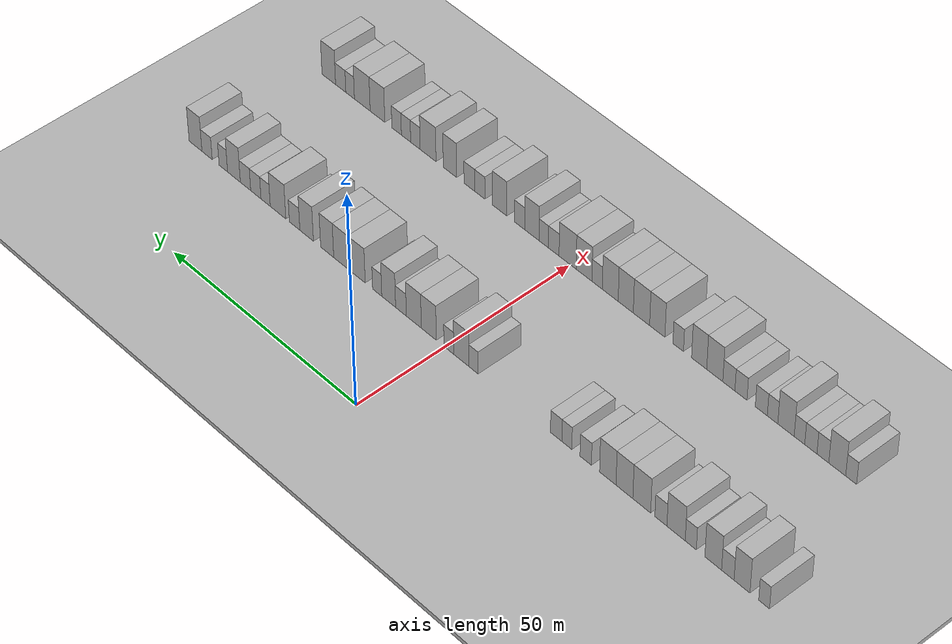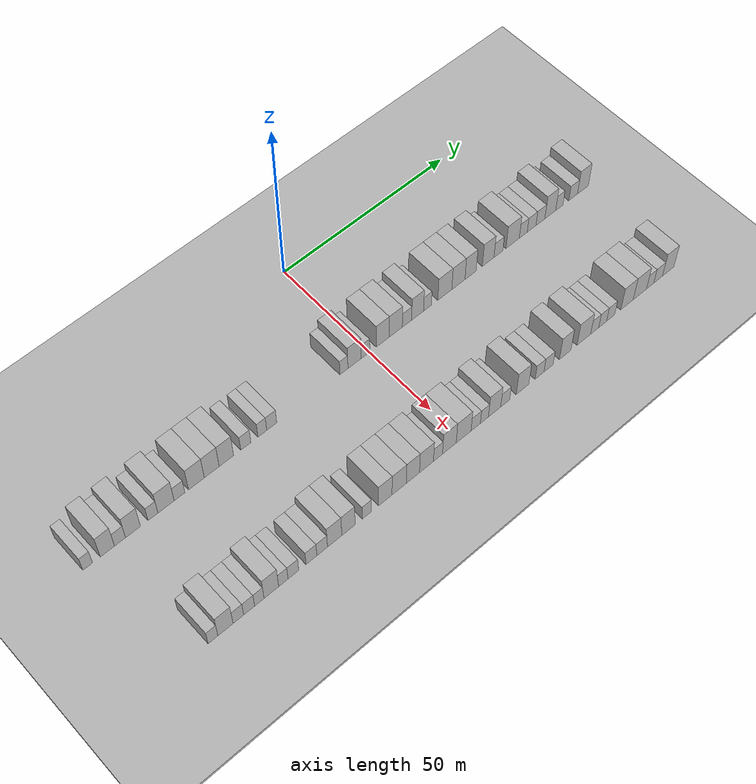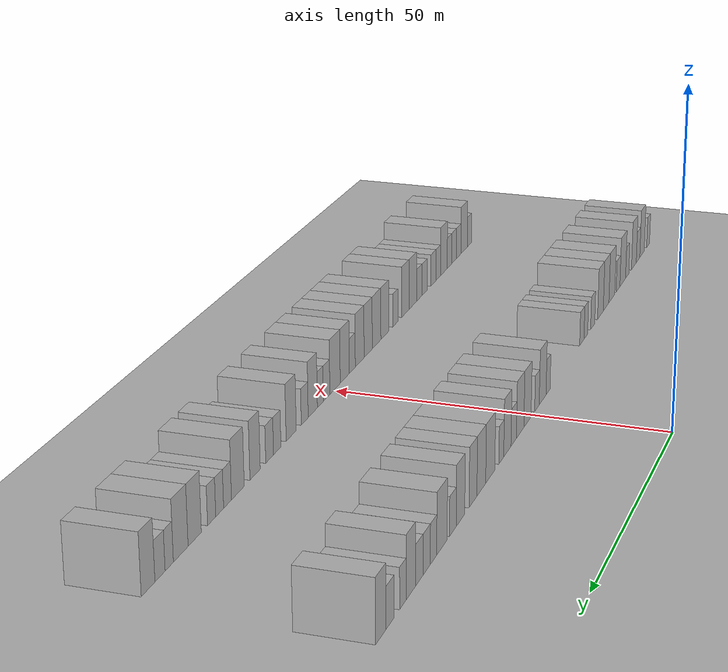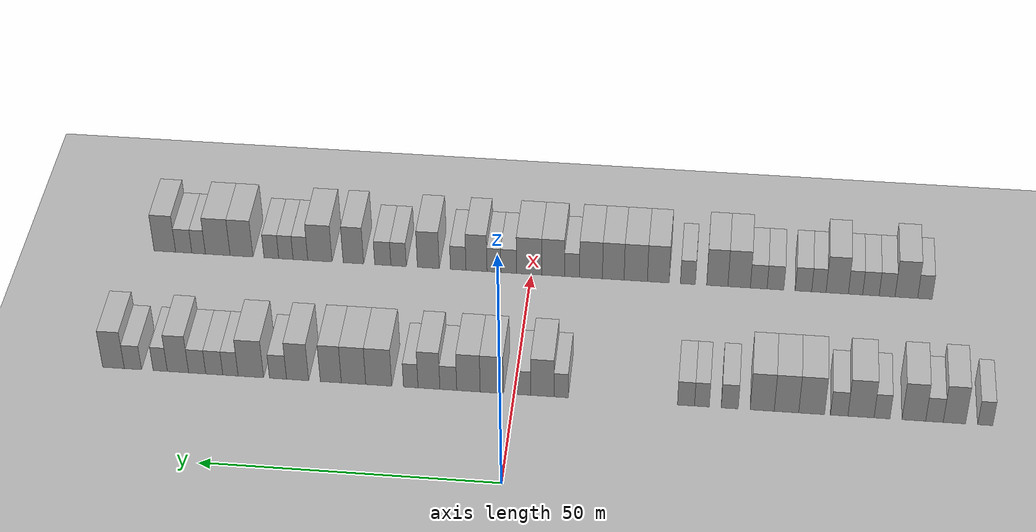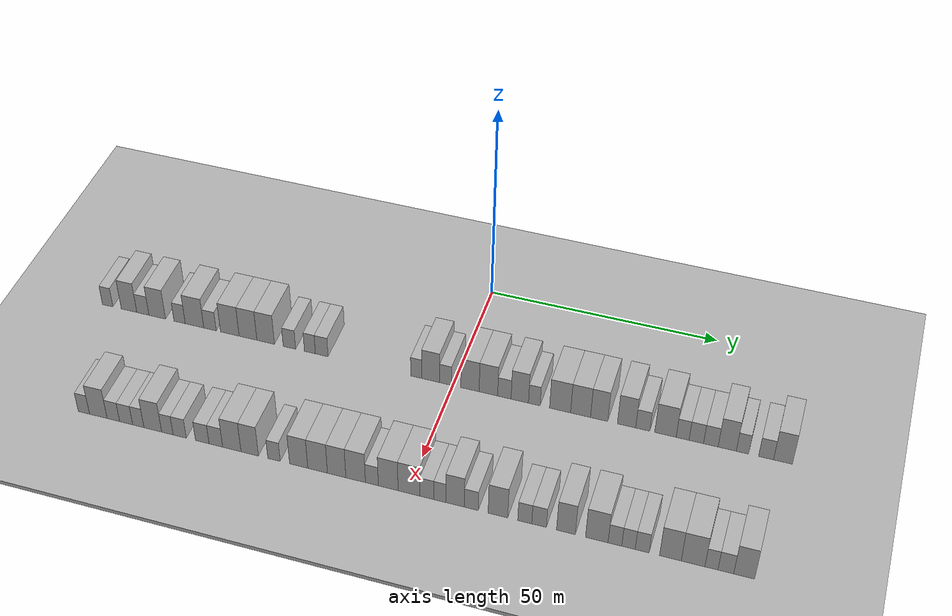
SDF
<sdf version="1.6">
 <world name="default">
  <include><name>ground_plane_1</name><uri>model://HANNAS_ground_plane</uri></include>
  <include>
   <name>ground_plane_2</name>
   <uri>model://HANNAS_ground_plane</uri>
   <pose>100 0 0  0 0 0</pose>
  </include>
  <model name="building_38">
   <static>1</static>
   <pose>25.0000 -78.6994 0 0.000000 0.000000 0.000000</pose>
   <link name="link">
    <pose>0 0 3.00 0 0 0</pose>
    <collision name="collision"><geometry><box><size>10.0000 2.4998 6.0000</size></box></geometry></collision>
    <visual name="visual">
     <cast_shadows>0</cast_shadows>
     <geometry><box><size>10.0000 2.4998 6.0000</size></box></geometry>
     <material>
      <script>
       <uri>model://HANNAS_wall/materials/scripts</uri>
       <uri>model://HANNAS_wall/materials/textures</uri>
       <name>vrc/HANNAS_wall</name>
      </script>
     </material>
    </visual>
   </link>
  </model>
  <model name="building_39">
   <static>1</static>
   <pose>25.0000 -73.6021 0 0.000000 0.000000 0.000000</pose>
   <link name="link">
    <pose>0 0 4.50 0 0 0</pose>
    <collision name="collision"><geometry><box><size>10.0000 3.6949 9.0000</size></box></geometry></collision>
    <visual name="visual">
     <cast_shadows>0</cast_shadows>
     <geometry><box><size>10.0000 3.6949 9.0000</size></box></geometry>
     <material>
      <script>
       <uri>model://HANNAS_wall/materials/scripts</uri>
       <uri>model://HANNAS_wall/materials/textures</uri>
       <name>vrc/HANNAS_wall</name>
      </script>
     </material>
    </visual>
   </link>
  </model>
  <model name="building_40">
   <static>1</static>
   <pose>25.0000 -70.3064 0 0.000000 0.000000 0.000000</pose>
   <link name="link">
    <pose>0 0 3.00 0 0 0</pose>
    <collision name="collision"><geometry><box><size>10.0000 2.8964 6.0000</size></box></geometry></collision>
    <visual name="visual">
     <cast_shadows>0</cast_shadows>
     <geometry><box><size>10.0000 2.8964 6.0000</size></box></geometry>
     <material>
      <script>
       <uri>model://HANNAS_wall/materials/scripts</uri>
       <uri>model://HANNAS_wall/materials/textures</uri>
       <name>vrc/HANNAS_wall</name>
      </script>
     </material>
    </visual>
   </link>
  </model>
  <model name="building_41">
   <static>1</static>
   <pose>25.0000 -66.8983 0 0.000000 0.000000 0.000000</pose>
   <link name="link">
    <pose>0 0 4.50 0 0 0</pose>
    <collision name="collision"><geometry><box><size>10.0000 3.9198 9.0000</size></box></geometry></collision>
    <visual name="visual">
     <cast_shadows>0</cast_shadows>
     <geometry><box><size>10.0000 3.9198 9.0000</size></box></geometry>
     <material>
      <script>
       <uri>model://HANNAS_wall/materials/scripts</uri>
       <uri>model://HANNAS_wall/materials/textures</uri>
       <name>vrc/HANNAS_wall</name>
      </script>
     </material>
    </visual>
   </link>
  </model>
  <model name="building_42">
   <static>1</static>
   <pose>25.0000 -61.6221 0 0.000000 0.000000 0.000000</pose>
   <link name="link">
    <pose>0 0 3.00 0 0 0</pose>
    <collision name="collision"><geometry><box><size>10.0000 2.6326 6.0000</size></box></geometry></collision>
    <visual name="visual">
     <cast_shadows>0</cast_shadows>
     <geometry><box><size>10.0000 2.6326 6.0000</size></box></geometry>
     <material>
      <script>
       <uri>model://HANNAS_wall/materials/scripts</uri>
       <uri>model://HANNAS_wall/materials/textures</uri>
       <name>vrc/HANNAS_wall</name>
      </script>
     </material>
    </visual>
   </link>
  </model>
  <model name="building_43">
   <static>1</static>
   <pose>25.0000 -58.1320 0 0.000000 0.000000 0.000000</pose>
   <link name="link">
    <pose>0 0 4.50 0 0 0</pose>
    <collision name="collision"><geometry><box><size>10.0000 4.3477 9.0000</size></box></geometry></collision>
    <visual name="visual">
     <cast_shadows>0</cast_shadows>
     <geometry><box><size>10.0000 4.3477 9.0000</size></box></geometry>
     <material>
      <script>
       <uri>model://HANNAS_wall/materials/scripts</uri>
       <uri>model://HANNAS_wall/materials/textures</uri>
       <name>vrc/HANNAS_wall</name>
      </script>
     </material>
    </visual>
   </link>
  </model>
  <model name="building_44">
   <static>1</static>
   <pose>25.0000 -54.5126 0 0.000000 0.000000 0.000000</pose>
   <link name="link">
    <pose>0 0 3.00 0 0 0</pose>
    <collision name="collision"><geometry><box><size>10.0000 2.8912 6.0000</size></box></geometry></collision>
    <visual name="visual">
     <cast_shadows>0</cast_shadows>
     <geometry><box><size>10.0000 2.8912 6.0000</size></box></geometry>
     <material>
      <script>
       <uri>model://HANNAS_wall/materials/scripts</uri>
       <uri>model://HANNAS_wall/materials/textures</uri>
       <name>vrc/HANNAS_wall</name>
      </script>
     </material>
    </visual>
   </link>
  </model>
  <model name="building_45">
   <static>1</static>
   <pose>25.0000 -49.9171 0 0.000000 0.000000 0.000000</pose>
   <link name="link">
    <pose>0 0 4.50 0 0 0</pose>
    <collision name="collision"><geometry><box><size>10.0000 4.2998 9.0000</size></box></geometry></collision>
    <visual name="visual">
     <cast_shadows>0</cast_shadows>
     <geometry><box><size>10.0000 4.2998 9.0000</size></box></geometry>
     <material>
      <script>
       <uri>model://HANNAS_wall/materials/scripts</uri>
       <uri>model://HANNAS_wall/materials/textures</uri>
       <name>vrc/HANNAS_wall</name>
      </script>
     </material>
    </visual>
   </link>
  </model>
  <model name="building_46">
   <static>1</static>
   <pose>25.0000 -45.7218 0 0.000000 0.000000 0.000000</pose>
   <link name="link">
    <pose>0 0 4.50 0 0 0</pose>
    <collision name="collision"><geometry><box><size>10.0000 4.0908 9.0000</size></box></geometry></collision>
    <visual name="visual">
     <cast_shadows>0</cast_shadows>
     <geometry><box><size>10.0000 4.0908 9.0000</size></box></geometry>
     <material>
      <script>
       <uri>model://HANNAS_wall/materials/scripts</uri>
       <uri>model://HANNAS_wall/materials/textures</uri>
       <name>vrc/HANNAS_wall</name>
      </script>
     </material>
    </visual>
   </link>
  </model>
  <model name="building_47">
   <static>1</static>
   <pose>25.0000 -41.6653 0 0.000000 0.000000 0.000000</pose>
   <link name="link">
    <pose>0 0 4.50 0 0 0</pose>
    <collision name="collision"><geometry><box><size>10.0000 4.0222 9.0000</size></box></geometry></collision>
    <visual name="visual">
     <cast_shadows>0</cast_shadows>
     <geometry><box><size>10.0000 4.0222 9.0000</size></box></geometry>
     <material>
      <script>
       <uri>model://HANNAS_wall/materials/scripts</uri>
       <uri>model://HANNAS_wall/materials/textures</uri>
       <name>vrc/HANNAS_wall</name>
      </script>
     </material>
    </visual>
   </link>
  </model>
  <model name="building_48">
   <static>1</static>
   <pose>25.0000 -36.2371 0 0.000000 0.000000 0.000000</pose>
   <link name="link">
    <pose>0 0 3.00 0 0 0</pose>
    <collision name="collision"><geometry><box><size>10.0000 2.8341 6.0000</size></box></geometry></collision>
    <visual name="visual">
     <cast_shadows>0</cast_shadows>
     <geometry><box><size>10.0000 2.8341 6.0000</size></box></geometry>
     <material>
      <script>
       <uri>model://HANNAS_wall/materials/scripts</uri>
       <uri>model://HANNAS_wall/materials/textures</uri>
       <name>vrc/HANNAS_wall</name>
      </script>
     </material>
    </visual>
   </link>
  </model>
  <model name="building_49">
   <static>1</static>
   <pose>25.0000 -31.5848 0 0.000000 0.000000 0.000000</pose>
   <link name="link">
    <pose>0 0 3.00 0 0 0</pose>
    <collision name="collision"><geometry><box><size>10.0000 2.4705 6.0000</size></box></geometry></collision>
    <visual name="visual">
     <cast_shadows>0</cast_shadows>
     <geometry><box><size>10.0000 2.4705 6.0000</size></box></geometry>
     <material>
      <script>
       <uri>model://HANNAS_wall/materials/scripts</uri>
       <uri>model://HANNAS_wall/materials/textures</uri>
       <name>vrc/HANNAS_wall</name>
      </script>
     </material>
    </visual>
   </link>
  </model>
  <model name="building_50">
   <static>1</static>
   <pose>25.0000 -28.9185 0 0.000000 0.000000 0.000000</pose>
   <link name="link">
    <pose>0 0 3.00 0 0 0</pose>
    <collision name="collision"><geometry><box><size>10.0000 2.8621 6.0000</size></box></geometry></collision>
    <visual name="visual">
     <cast_shadows>0</cast_shadows>
     <geometry><box><size>10.0000 2.8621 6.0000</size></box></geometry>
     <material>
      <script>
       <uri>model://HANNAS_wall/materials/scripts</uri>
       <uri>model://HANNAS_wall/materials/textures</uri>
       <name>vrc/HANNAS_wall</name>
      </script>
     </material>
    </visual>
   </link>
  </model>
  <model name="building_51">
   <static>1</static>
   <pose>25.0000 -7.8874 0 0.000000 0.000000 0.000000</pose>
   <link name="link">
    <pose>0 0 3.00 0 0 0</pose>
    <collision name="collision"><geometry><box><size>10.0000 2.4000 6.0000</size></box></geometry></collision>
    <visual name="visual">
     <cast_shadows>0</cast_shadows>
     <geometry><box><size>10.0000 2.4000 6.0000</size></box></geometry>
     <material>
      <script>
       <uri>model://HANNAS_wall/materials/scripts</uri>
       <uri>model://HANNAS_wall/materials/textures</uri>
       <name>vrc/HANNAS_wall</name>
      </script>
     </material>
    </visual>
   </link>
  </model>
  <model name="building_52">
   <static>1</static>
   <pose>25.0000 -4.7099 0 0.000000 0.000000 0.000000</pose>
   <link name="link">
    <pose>0 0 4.50 0 0 0</pose>
    <collision name="collision"><geometry><box><size>10.0000 3.9548 9.0000</size></box></geometry></collision>
    <visual name="visual">
     <cast_shadows>0</cast_shadows>
     <geometry><box><size>10.0000 3.9548 9.0000</size></box></geometry>
     <material>
      <script>
       <uri>model://HANNAS_wall/materials/scripts</uri>
       <uri>model://HANNAS_wall/materials/textures</uri>
       <name>vrc/HANNAS_wall</name>
      </script>
     </material>
    </visual>
   </link>
  </model>
  <model name="building_53">
   <static>1</static>
   <pose>25.0000 -1.4453 0 0.000000 0.000000 0.000000</pose>
   <link name="link">
    <pose>0 0 3.00 0 0 0</pose>
    <collision name="collision"><geometry><box><size>10.0000 2.5744 6.0000</size></box></geometry></collision>
    <visual name="visual">
     <cast_shadows>0</cast_shadows>
     <geometry><box><size>10.0000 2.5744 6.0000</size></box></geometry>
     <material>
      <script>
       <uri>model://HANNAS_wall/materials/scripts</uri>
       <uri>model://HANNAS_wall/materials/textures</uri>
       <name>vrc/HANNAS_wall</name>
      </script>
     </material>
    </visual>
   </link>
  </model>
  <model name="building_54">
   <static>1</static>
   <pose>25.0000 3.8221 0 0.000000 0.000000 0.000000</pose>
   <link name="link">
    <pose>0 0 4.50 0 0 0</pose>
    <collision name="collision"><geometry><box><size>10.0000 3.9604 9.0000</size></box></geometry></collision>
    <visual name="visual">
     <cast_shadows>0</cast_shadows>
     <geometry><box><size>10.0000 3.9604 9.0000</size></box></geometry>
     <material>
      <script>
       <uri>model://HANNAS_wall/materials/scripts</uri>
       <uri>model://HANNAS_wall/materials/textures</uri>
       <name>vrc/HANNAS_wall</name>
      </script>
     </material>
    </visual>
   </link>
  </model>
  <model name="building_55">
   <static>1</static>
   <pose>25.0000 7.7938 0 0.000000 0.000000 0.000000</pose>
   <link name="link">
    <pose>0 0 4.50 0 0 0</pose>
    <collision name="collision"><geometry><box><size>10.0000 3.9830 9.0000</size></box></geometry></collision>
    <visual name="visual">
     <cast_shadows>0</cast_shadows>
     <geometry><box><size>10.0000 3.9830 9.0000</size></box></geometry>
     <material>
      <script>
       <uri>model://HANNAS_wall/materials/scripts</uri>
       <uri>model://HANNAS_wall/materials/textures</uri>
       <name>vrc/HANNAS_wall</name>
      </script>
     </material>
    </visual>
   </link>
  </model>
  <model name="building_56">
   <static>1</static>
   <pose>25.0000 11.2202 0 0.000000 0.000000 0.000000</pose>
   <link name="link">
    <pose>0 0 3.00 0 0 0</pose>
    <collision name="collision"><geometry><box><size>10.0000 2.8698 6.0000</size></box></geometry></collision>
    <visual name="visual">
     <cast_shadows>0</cast_shadows>
     <geometry><box><size>10.0000 2.8698 6.0000</size></box></geometry>
     <material>
      <script>
       <uri>model://HANNAS_wall/materials/scripts</uri>
       <uri>model://HANNAS_wall/materials/textures</uri>
       <name>vrc/HANNAS_wall</name>
      </script>
     </material>
    </visual>
   </link>
  </model>
  <model name="building_57">
   <static>1</static>
   <pose>25.0000 14.5161 0 0.000000 0.000000 0.000000</pose>
   <link name="link">
    <pose>0 0 4.50 0 0 0</pose>
    <collision name="collision"><geometry><box><size>10.0000 3.7220 9.0000</size></box></geometry></collision>
    <visual name="visual">
     <cast_shadows>0</cast_shadows>
     <geometry><box><size>10.0000 3.7220 9.0000</size></box></geometry>
     <material>
      <script>
       <uri>model://HANNAS_wall/materials/scripts</uri>
       <uri>model://HANNAS_wall/materials/textures</uri>
       <name>vrc/HANNAS_wall</name>
      </script>
     </material>
    </visual>
   </link>
  </model>
  <model name="building_58">
   <static>1</static>
   <pose>25.0000 17.6144 0 0.000000 0.000000 0.000000</pose>
   <link name="link">
    <pose>0 0 3.00 0 0 0</pose>
    <collision name="collision"><geometry><box><size>10.0000 2.4745 6.0000</size></box></geometry></collision>
    <visual name="visual">
     <cast_shadows>0</cast_shadows>
     <geometry><box><size>10.0000 2.4745 6.0000</size></box></geometry>
     <material>
      <script>
       <uri>model://HANNAS_wall/materials/scripts</uri>
       <uri>model://HANNAS_wall/materials/textures</uri>
       <name>vrc/HANNAS_wall</name>
      </script>
     </material>
    </visual>
   </link>
  </model>
  <model name="building_59">
   <static>1</static>
   <pose>25.0000 23.0689 0 0.000000 0.000000 0.000000</pose>
   <link name="link">
    <pose>0 0 4.50 0 0 0</pose>
    <collision name="collision"><geometry><box><size>10.0000 4.4346 9.0000</size></box></geometry></collision>
    <visual name="visual">
     <cast_shadows>0</cast_shadows>
     <geometry><box><size>10.0000 4.4346 9.0000</size></box></geometry>
     <material>
      <script>
       <uri>model://HANNAS_wall/materials/scripts</uri>
       <uri>model://HANNAS_wall/materials/textures</uri>
       <name>vrc/HANNAS_wall</name>
      </script>
     </material>
    </visual>
   </link>
  </model>
  <model name="building_60">
   <static>1</static>
   <pose>25.0000 27.3746 0 0.000000 0.000000 0.000000</pose>
   <link name="link">
    <pose>0 0 4.50 0 0 0</pose>
    <collision name="collision"><geometry><box><size>10.0000 4.1768 9.0000</size></box></geometry></collision>
    <visual name="visual">
     <cast_shadows>0</cast_shadows>
     <geometry><box><size>10.0000 4.1768 9.0000</size></box></geometry>
     <material>
      <script>
       <uri>model://HANNAS_wall/materials/scripts</uri>
       <uri>model://HANNAS_wall/materials/textures</uri>
       <name>vrc/HANNAS_wall</name>
      </script>
     </material>
    </visual>
   </link>
  </model>
  <model name="building_61">
   <static>1</static>
   <pose>25.0000 31.2651 0 0.000000 0.000000 0.000000</pose>
   <link name="link">
    <pose>0 0 4.50 0 0 0</pose>
    <collision name="collision"><geometry><box><size>10.0000 3.6042 9.0000</size></box></geometry></collision>
    <visual name="visual">
     <cast_shadows>0</cast_shadows>
     <geometry><box><size>10.0000 3.6042 9.0000</size></box></geometry>
     <material>
      <script>
       <uri>model://HANNAS_wall/materials/scripts</uri>
       <uri>model://HANNAS_wall/materials/textures</uri>
       <name>vrc/HANNAS_wall</name>
      </script>
     </material>
    </visual>
   </link>
  </model>
  <model name="building_62">
   <static>1</static>
   <pose>25.0000 36.9621 0 0.000000 0.000000 0.000000</pose>
   <link name="link">
    <pose>0 0 4.50 0 0 0</pose>
    <collision name="collision"><geometry><box><size>10.0000 3.7897 9.0000</size></box></geometry></collision>
    <visual name="visual">
     <cast_shadows>0</cast_shadows>
     <geometry><box><size>10.0000 3.7897 9.0000</size></box></geometry>
     <material>
      <script>
       <uri>model://HANNAS_wall/materials/scripts</uri>
       <uri>model://HANNAS_wall/materials/textures</uri>
       <name>vrc/HANNAS_wall</name>
      </script>
     </material>
    </visual>
   </link>
  </model>
  <model name="building_63">
   <static>1</static>
   <pose>25.0000 40.3198 0 0.000000 0.000000 0.000000</pose>
   <link name="link">
    <pose>0 0 3.00 0 0 0</pose>
    <collision name="collision"><geometry><box><size>10.0000 2.9256 6.0000</size></box></geometry></collision>
    <visual name="visual">
     <cast_shadows>0</cast_shadows>
     <geometry><box><size>10.0000 2.9256 6.0000</size></box></geometry>
     <material>
      <script>
       <uri>model://HANNAS_wall/materials/scripts</uri>
       <uri>model://HANNAS_wall/materials/textures</uri>
       <name>vrc/HANNAS_wall</name>
      </script>
     </material>
    </visual>
   </link>
  </model>
  <model name="building_64">
   <static>1</static>
   <pose>25.0000 44.9827 0 0.000000 0.000000 0.000000</pose>
   <link name="link">
    <pose>0 0 4.50 0 0 0</pose>
    <collision name="collision"><geometry><box><size>10.0000 4.4003 9.0000</size></box></geometry></collision>
    <visual name="visual">
     <cast_shadows>0</cast_shadows>
     <geometry><box><size>10.0000 4.4003 9.0000</size></box></geometry>
     <material>
      <script>
       <uri>model://HANNAS_wall/materials/scripts</uri>
       <uri>model://HANNAS_wall/materials/textures</uri>
       <name>vrc/HANNAS_wall</name>
      </script>
     </material>
    </visual>
   </link>
  </model>
  <model name="building_65">
   <static>1</static>
   <pose>25.0000 48.4981 0 0.000000 0.000000 0.000000</pose>
   <link name="link">
    <pose>0 0 3.00 0 0 0</pose>
    <collision name="collision"><geometry><box><size>10.0000 2.6304 6.0000</size></box></geometry></collision>
    <visual name="visual">
     <cast_shadows>0</cast_shadows>
     <geometry><box><size>10.0000 2.6304 6.0000</size></box></geometry>
     <material>
      <script>
       <uri>model://HANNAS_wall/materials/scripts</uri>
       <uri>model://HANNAS_wall/materials/textures</uri>
       <name>vrc/HANNAS_wall</name>
      </script>
     </material>
    </visual>
   </link>
  </model>
  <model name="building_66">
   <static>1</static>
   <pose>25.0000 51.2826 0 0.000000 0.000000 0.000000</pose>
   <link name="link">
    <pose>0 0 3.00 0 0 0</pose>
    <collision name="collision"><geometry><box><size>10.0000 2.9387 6.0000</size></box></geometry></collision>
    <visual name="visual">
     <cast_shadows>0</cast_shadows>
     <geometry><box><size>10.0000 2.9387 6.0000</size></box></geometry>
     <material>
      <script>
       <uri>model://HANNAS_wall/materials/scripts</uri>
       <uri>model://HANNAS_wall/materials/textures</uri>
       <name>vrc/HANNAS_wall</name>
      </script>
     </material>
    </visual>
   </link>
  </model>
  <model name="building_67">
   <static>1</static>
   <pose>25.0000 54.2302 0 0.000000 0.000000 0.000000</pose>
   <link name="link">
    <pose>0 0 3.00 0 0 0</pose>
    <collision name="collision"><geometry><box><size>10.0000 2.9566 6.0000</size></box></geometry></collision>
    <visual name="visual">
     <cast_shadows>0</cast_shadows>
     <geometry><box><size>10.0000 2.9566 6.0000</size></box></geometry>
     <material>
      <script>
       <uri>model://HANNAS_wall/materials/scripts</uri>
       <uri>model://HANNAS_wall/materials/textures</uri>
       <name>vrc/HANNAS_wall</name>
      </script>
     </material>
    </visual>
   </link>
  </model>
  <model name="building_68">
   <static>1</static>
   <pose>25.0000 57.5449 0 0.000000 0.000000 0.000000</pose>
   <link name="link">
    <pose>0 0 4.50 0 0 0</pose>
    <collision name="collision"><geometry><box><size>10.0000 3.6728 9.0000</size></box></geometry></collision>
    <visual name="visual">
     <cast_shadows>0</cast_shadows>
     <geometry><box><size>10.0000 3.6728 9.0000</size></box></geometry>
     <material>
      <script>
       <uri>model://HANNAS_wall/materials/scripts</uri>
       <uri>model://HANNAS_wall/materials/textures</uri>
       <name>vrc/HANNAS_wall</name>
      </script>
     </material>
    </visual>
   </link>
  </model>
  <model name="building_69">
   <static>1</static>
   <pose>25.0000 60.6109 0 0.000000 0.000000 0.000000</pose>
   <link name="link">
    <pose>0 0 3.00 0 0 0</pose>
    <collision name="collision"><geometry><box><size>10.0000 2.4591 6.0000</size></box></geometry></collision>
    <visual name="visual">
     <cast_shadows>0</cast_shadows>
     <geometry><box><size>10.0000 2.4591 6.0000</size></box></geometry>
     <material>
      <script>
       <uri>model://HANNAS_wall/materials/scripts</uri>
       <uri>model://HANNAS_wall/materials/textures</uri>
       <name>vrc/HANNAS_wall</name>
      </script>
     </material>
    </visual>
   </link>
  </model>
  <model name="building_70">
   <static>1</static>
   <pose>25.0000 65.3339 0 0.000000 0.000000 0.000000</pose>
   <link name="link">
    <pose>0 0 3.00 0 0 0</pose>
    <collision name="collision"><geometry><box><size>10.0000 2.9868 6.0000</size></box></geometry></collision>
    <visual name="visual">
     <cast_shadows>0</cast_shadows>
     <geometry><box><size>10.0000 2.9868 6.0000</size></box></geometry>
     <material>
      <script>
       <uri>model://HANNAS_wall/materials/scripts</uri>
       <uri>model://HANNAS_wall/materials/textures</uri>
       <name>vrc/HANNAS_wall</name>
      </script>
     </material>
    </visual>
   </link>
  </model>
  <model name="building_71">
   <static>1</static>
   <pose>25.0000 68.7001 0 0.000000 0.000000 0.000000</pose>
   <link name="link">
    <pose>0 0 4.50 0 0 0</pose>
    <collision name="collision"><geometry><box><size>10.0000 3.7457 9.0000</size></box></geometry></collision>
    <visual name="visual">
     <cast_shadows>0</cast_shadows>
     <geometry><box><size>10.0000 3.7457 9.0000</size></box></geometry>
     <material>
      <script>
       <uri>model://HANNAS_wall/materials/scripts</uri>
       <uri>model://HANNAS_wall/materials/textures</uri>
       <name>vrc/HANNAS_wall</name>
      </script>
     </material>
    </visual>
   </link>
  </model>
  <model name="building_145">
   <static>1</static>
   <pose>55.0000 -69.4930 0 0.000000 0.000000 0.000000</pose>
   <link name="link">
    <pose>0 0 3.00 0 0 0</pose>
    <collision name="collision"><geometry><box><size>10.0000 2.5376 6.0000</size></box></geometry></collision>
    <visual name="visual">
     <cast_shadows>0</cast_shadows>
     <geometry><box><size>10.0000 2.5376 6.0000</size></box></geometry>
     <material>
      <script>
       <uri>model://HANNAS_wall/materials/scripts</uri>
       <uri>model://HANNAS_wall/materials/textures</uri>
       <name>vrc/HANNAS_wall</name>
      </script>
     </material>
    </visual>
   </link>
  </model>
  <model name="building_146">
   <static>1</static>
   <pose>55.0000 -66.2457 0 0.000000 0.000000 0.000000</pose>
   <link name="link">
    <pose>0 0 4.50 0 0 0</pose>
    <collision name="collision"><geometry><box><size>10.0000 3.9568 9.0000</size></box></geometry></collision>
    <visual name="visual">
     <cast_shadows>0</cast_shadows>
     <geometry><box><size>10.0000 3.9568 9.0000</size></box></geometry>
     <material>
      <script>
       <uri>model://HANNAS_wall/materials/scripts</uri>
       <uri>model://HANNAS_wall/materials/textures</uri>
       <name>vrc/HANNAS_wall</name>
      </script>
     </material>
    </visual>
   </link>
  </model>
  <model name="building_147">
   <static>1</static>
   <pose>55.0000 -62.8749 0 0.000000 0.000000 0.000000</pose>
   <link name="link">
    <pose>0 0 3.00 0 0 0</pose>
    <collision name="collision"><geometry><box><size>10.0000 2.7849 6.0000</size></box></geometry></collision>
    <visual name="visual">
     <cast_shadows>0</cast_shadows>
     <geometry><box><size>10.0000 2.7849 6.0000</size></box></geometry>
     <material>
      <script>
       <uri>model://HANNAS_wall/materials/scripts</uri>
       <uri>model://HANNAS_wall/materials/textures</uri>
       <name>vrc/HANNAS_wall</name>
      </script>
     </material>
    </visual>
   </link>
  </model>
  <model name="building_148">
   <static>1</static>
   <pose>55.0000 -60.0363 0 0.000000 0.000000 0.000000</pose>
   <link name="link">
    <pose>0 0 3.00 0 0 0</pose>
    <collision name="collision"><geometry><box><size>10.0000 2.8922 6.0000</size></box></geometry></collision>
    <visual name="visual">
     <cast_shadows>0</cast_shadows>
     <geometry><box><size>10.0000 2.8922 6.0000</size></box></geometry>
     <material>
      <script>
       <uri>model://HANNAS_wall/materials/scripts</uri>
       <uri>model://HANNAS_wall/materials/textures</uri>
       <name>vrc/HANNAS_wall</name>
      </script>
     </material>
    </visual>
   </link>
  </model>
  <model name="building_149">
   <static>1</static>
   <pose>55.0000 -57.3353 0 0.000000 0.000000 0.000000</pose>
   <link name="link">
    <pose>0 0 3.00 0 0 0</pose>
    <collision name="collision"><geometry><box><size>10.0000 2.5100 6.0000</size></box></geometry></collision>
    <visual name="visual">
     <cast_shadows>0</cast_shadows>
     <geometry><box><size>10.0000 2.5100 6.0000</size></box></geometry>
     <material>
      <script>
       <uri>model://HANNAS_wall/materials/scripts</uri>
       <uri>model://HANNAS_wall/materials/textures</uri>
       <name>vrc/HANNAS_wall</name>
      </script>
     </material>
    </visual>
   </link>
  </model>
  <model name="building_150">
   <static>1</static>
   <pose>55.0000 -54.1205 0 0.000000 0.000000 0.000000</pose>
   <link name="link">
    <pose>0 0 4.50 0 0 0</pose>
    <collision name="collision"><geometry><box><size>10.0000 3.9195 9.0000</size></box></geometry></collision>
    <visual name="visual">
     <cast_shadows>0</cast_shadows>
     <geometry><box><size>10.0000 3.9195 9.0000</size></box></geometry>
     <material>
      <script>
       <uri>model://HANNAS_wall/materials/scripts</uri>
       <uri>model://HANNAS_wall/materials/textures</uri>
       <name>vrc/HANNAS_wall</name>
      </script>
     </material>
    </visual>
   </link>
  </model>
  <model name="building_151">
   <static>1</static>
   <pose>55.0000 -50.9017 0 0.000000 0.000000 0.000000</pose>
   <link name="link">
    <pose>0 0 3.00 0 0 0</pose>
    <collision name="collision"><geometry><box><size>10.0000 2.5180 6.0000</size></box></geometry></collision>
    <visual name="visual">
     <cast_shadows>0</cast_shadows>
     <geometry><box><size>10.0000 2.5180 6.0000</size></box></geometry>
     <material>
      <script>
       <uri>model://HANNAS_wall/materials/scripts</uri>
       <uri>model://HANNAS_wall/materials/textures</uri>
       <name>vrc/HANNAS_wall</name>
      </script>
     </material>
    </visual>
   </link>
  </model>
  <model name="building_152">
   <static>1</static>
   <pose>55.0000 -48.1927 0 0.000000 0.000000 0.000000</pose>
   <link name="link">
    <pose>0 0 3.00 0 0 0</pose>
    <collision name="collision"><geometry><box><size>10.0000 2.9001 6.0000</size></box></geometry></collision>
    <visual name="visual">
     <cast_shadows>0</cast_shadows>
     <geometry><box><size>10.0000 2.9001 6.0000</size></box></geometry>
     <material>
      <script>
       <uri>model://HANNAS_wall/materials/scripts</uri>
       <uri>model://HANNAS_wall/materials/textures</uri>
       <name>vrc/HANNAS_wall</name>
      </script>
     </material>
    </visual>
   </link>
  </model>
  <model name="building_153">
   <static>1</static>
   <pose>55.0000 -43.2676 0 0.000000 0.000000 0.000000</pose>
   <link name="link">
    <pose>0 0 3.00 0 0 0</pose>
    <collision name="collision"><geometry><box><size>10.0000 2.9501 6.0000</size></box></geometry></collision>
    <visual name="visual">
     <cast_shadows>0</cast_shadows>
     <geometry><box><size>10.0000 2.9501 6.0000</size></box></geometry>
     <material>
      <script>
       <uri>model://HANNAS_wall/materials/scripts</uri>
       <uri>model://HANNAS_wall/materials/textures</uri>
       <name>vrc/HANNAS_wall</name>
      </script>
     </material>
    </visual>
   </link>
  </model>
  <model name="building_154">
   <static>1</static>
   <pose>55.0000 -40.3188 0 0.000000 0.000000 0.000000</pose>
   <link name="link">
    <pose>0 0 3.00 0 0 0</pose>
    <collision name="collision"><geometry><box><size>10.0000 2.9473 6.0000</size></box></geometry></collision>
    <visual name="visual">
     <cast_shadows>0</cast_shadows>
     <geometry><box><size>10.0000 2.9473 6.0000</size></box></geometry>
     <material>
      <script>
       <uri>model://HANNAS_wall/materials/scripts</uri>
       <uri>model://HANNAS_wall/materials/textures</uri>
       <name>vrc/HANNAS_wall</name>
      </script>
     </material>
    </visual>
   </link>
  </model>
  <model name="building_155">
   <static>1</static>
   <pose>55.0000 -36.8621 0 0.000000 0.000000 0.000000</pose>
   <link name="link">
    <pose>0 0 4.50 0 0 0</pose>
    <collision name="collision"><geometry><box><size>10.0000 3.9661 9.0000</size></box></geometry></collision>
    <visual name="visual">
     <cast_shadows>0</cast_shadows>
     <geometry><box><size>10.0000 3.9661 9.0000</size></box></geometry>
     <material>
      <script>
       <uri>model://HANNAS_wall/materials/scripts</uri>
       <uri>model://HANNAS_wall/materials/textures</uri>
       <name>vrc/HANNAS_wall</name>
      </script>
     </material>
    </visual>
   </link>
  </model>
  <model name="building_156">
   <static>1</static>
   <pose>55.0000 -33.0040 0 0.000000 0.000000 0.000000</pose>
   <link name="link">
    <pose>0 0 4.50 0 0 0</pose>
    <collision name="collision"><geometry><box><size>10.0000 3.7501 9.0000</size></box></geometry></collision>
    <visual name="visual">
     <cast_shadows>0</cast_shadows>
     <geometry><box><size>10.0000 3.7501 9.0000</size></box></geometry>
     <material>
      <script>
       <uri>model://HANNAS_wall/materials/scripts</uri>
       <uri>model://HANNAS_wall/materials/textures</uri>
       <name>vrc/HANNAS_wall</name>
      </script>
     </material>
    </visual>
   </link>
  </model>
  <model name="building_157">
   <static>1</static>
   <pose>55.0000 -27.8074 0 0.000000 0.000000 0.000000</pose>
   <link name="link">
    <pose>0 0 3.00 0 0 0</pose>
    <collision name="collision"><geometry><box><size>10.0000 2.6430 6.0000</size></box></geometry></collision>
    <visual name="visual">
     <cast_shadows>0</cast_shadows>
     <geometry><box><size>10.0000 2.6430 6.0000</size></box></geometry>
     <material>
      <script>
       <uri>model://HANNAS_wall/materials/scripts</uri>
       <uri>model://HANNAS_wall/materials/textures</uri>
       <name>vrc/HANNAS_wall</name>
      </script>
     </material>
    </visual>
   </link>
  </model>
  <model name="building_158">
   <static>1</static>
   <pose>55.0000 -22.5599 0 0.000000 0.000000 0.000000</pose>
   <link name="link">
    <pose>0 0 4.50 0 0 0</pose>
    <collision name="collision"><geometry><box><size>10.0000 3.8519 9.0000</size></box></geometry></collision>
    <visual name="visual">
     <cast_shadows>0</cast_shadows>
     <geometry><box><size>10.0000 3.8519 9.0000</size></box></geometry>
     <material>
      <script>
       <uri>model://HANNAS_wall/materials/scripts</uri>
       <uri>model://HANNAS_wall/materials/textures</uri>
       <name>vrc/HANNAS_wall</name>
      </script>
     </material>
    </visual>
   </link>
  </model>
  <model name="building_159">
   <static>1</static>
   <pose>55.0000 -18.5623 0 0.000000 0.000000 0.000000</pose>
   <link name="link">
    <pose>0 0 4.50 0 0 0</pose>
    <collision name="collision"><geometry><box><size>10.0000 4.1432 9.0000</size></box></geometry></collision>
    <visual name="visual">
     <cast_shadows>0</cast_shadows>
     <geometry><box><size>10.0000 4.1432 9.0000</size></box></geometry>
     <material>
      <script>
       <uri>model://HANNAS_wall/materials/scripts</uri>
       <uri>model://HANNAS_wall/materials/textures</uri>
       <name>vrc/HANNAS_wall</name>
      </script>
     </material>
    </visual>
   </link>
  </model>
  <model name="building_160">
   <static>1</static>
   <pose>55.0000 -14.5648 0 0.000000 0.000000 0.000000</pose>
   <link name="link">
    <pose>0 0 4.50 0 0 0</pose>
    <collision name="collision"><geometry><box><size>10.0000 3.8518 9.0000</size></box></geometry></collision>
    <visual name="visual">
     <cast_shadows>0</cast_shadows>
     <geometry><box><size>10.0000 3.8518 9.0000</size></box></geometry>
     <material>
      <script>
       <uri>model://HANNAS_wall/materials/scripts</uri>
       <uri>model://HANNAS_wall/materials/textures</uri>
       <name>vrc/HANNAS_wall</name>
      </script>
     </material>
    </visual>
   </link>
  </model>
  <model name="building_161">
   <static>1</static>
   <pose>55.0000 -10.5986 0 0.000000 0.000000 0.000000</pose>
   <link name="link">
    <pose>0 0 4.50 0 0 0</pose>
    <collision name="collision"><geometry><box><size>10.0000 4.0808 9.0000</size></box></geometry></collision>
    <visual name="visual">
     <cast_shadows>0</cast_shadows>
     <geometry><box><size>10.0000 4.0808 9.0000</size></box></geometry>
     <material>
      <script>
       <uri>model://HANNAS_wall/materials/scripts</uri>
       <uri>model://HANNAS_wall/materials/textures</uri>
       <name>vrc/HANNAS_wall</name>
      </script>
     </material>
    </visual>
   </link>
  </model>
  <model name="building_162">
   <static>1</static>
   <pose>55.0000 -7.2174 0 0.000000 0.000000 0.000000</pose>
   <link name="link">
    <pose>0 0 3.00 0 0 0</pose>
    <collision name="collision"><geometry><box><size>10.0000 2.6815 6.0000</size></box></geometry></collision>
    <visual name="visual">
     <cast_shadows>0</cast_shadows>
     <geometry><box><size>10.0000 2.6815 6.0000</size></box></geometry>
     <material>
      <script>
       <uri>model://HANNAS_wall/materials/scripts</uri>
       <uri>model://HANNAS_wall/materials/textures</uri>
       <name>vrc/HANNAS_wall</name>
      </script>
     </material>
    </visual>
   </link>
  </model>
  <model name="building_163">
   <static>1</static>
   <pose>55.0000 -3.8424 0 0.000000 0.000000 0.000000</pose>
   <link name="link">
    <pose>0 0 4.50 0 0 0</pose>
    <collision name="collision"><geometry><box><size>10.0000 4.0686 9.0000</size></box></geometry></collision>
    <visual name="visual">
     <cast_shadows>0</cast_shadows>
     <geometry><box><size>10.0000 4.0686 9.0000</size></box></geometry>
     <material>
      <script>
       <uri>model://HANNAS_wall/materials/scripts</uri>
       <uri>model://HANNAS_wall/materials/textures</uri>
       <name>vrc/HANNAS_wall</name>
      </script>
     </material>
    </visual>
   </link>
  </model>
  <model name="building_164">
   <static>1</static>
   <pose>55.0000 0.4347 0 0.000000 0.000000 0.000000</pose>
   <link name="link">
    <pose>0 0 4.50 0 0 0</pose>
    <collision name="collision"><geometry><box><size>10.0000 4.4855 9.0000</size></box></geometry></collision>
    <visual name="visual">
     <cast_shadows>0</cast_shadows>
     <geometry><box><size>10.0000 4.4855 9.0000</size></box></geometry>
     <material>
      <script>
       <uri>model://HANNAS_wall/materials/scripts</uri>
       <uri>model://HANNAS_wall/materials/textures</uri>
       <name>vrc/HANNAS_wall</name>
      </script>
     </material>
    </visual>
   </link>
  </model>
  <model name="building_165">
   <static>1</static>
   <pose>55.0000 4.0913 0 0.000000 0.000000 0.000000</pose>
   <link name="link">
    <pose>0 0 3.00 0 0 0</pose>
    <collision name="collision"><geometry><box><size>10.0000 2.8278 6.0000</size></box></geometry></collision>
    <visual name="visual">
     <cast_shadows>0</cast_shadows>
     <geometry><box><size>10.0000 2.8278 6.0000</size></box></geometry>
     <material>
      <script>
       <uri>model://HANNAS_wall/materials/scripts</uri>
       <uri>model://HANNAS_wall/materials/textures</uri>
       <name>vrc/HANNAS_wall</name>
      </script>
     </material>
    </visual>
   </link>
  </model>
  <model name="building_166">
   <static>1</static>
   <pose>55.0000 6.7241 0 0.000000 0.000000 0.000000</pose>
   <link name="link">
    <pose>0 0 3.00 0 0 0</pose>
    <collision name="collision"><geometry><box><size>10.0000 2.4378 6.0000</size></box></geometry></collision>
    <visual name="visual">
     <cast_shadows>0</cast_shadows>
     <geometry><box><size>10.0000 2.4378 6.0000</size></box></geometry>
     <material>
      <script>
       <uri>model://HANNAS_wall/materials/scripts</uri>
       <uri>model://HANNAS_wall/materials/textures</uri>
       <name>vrc/HANNAS_wall</name>
      </script>
     </material>
    </visual>
   </link>
  </model>
  <model name="building_167">
   <static>1</static>
   <pose>55.0000 9.8292 0 0.000000 0.000000 0.000000</pose>
   <link name="link">
    <pose>0 0 4.50 0 0 0</pose>
    <collision name="collision"><geometry><box><size>10.0000 3.7723 9.0000</size></box></geometry></collision>
    <visual name="visual">
     <cast_shadows>0</cast_shadows>
     <geometry><box><size>10.0000 3.7723 9.0000</size></box></geometry>
     <material>
      <script>
       <uri>model://HANNAS_wall/materials/scripts</uri>
       <uri>model://HANNAS_wall/materials/textures</uri>
       <name>vrc/HANNAS_wall</name>
      </script>
     </material>
    </visual>
   </link>
  </model>
  <model name="building_168">
   <static>1</static>
   <pose>55.0000 13.1143 0 0.000000 0.000000 0.000000</pose>
   <link name="link">
    <pose>0 0 3.00 0 0 0</pose>
    <collision name="collision"><geometry><box><size>10.0000 2.7979 6.0000</size></box></geometry></collision>
    <visual name="visual">
     <cast_shadows>0</cast_shadows>
     <geometry><box><size>10.0000 2.7979 6.0000</size></box></geometry>
     <material>
      <script>
       <uri>model://HANNAS_wall/materials/scripts</uri>
       <uri>model://HANNAS_wall/materials/textures</uri>
       <name>vrc/HANNAS_wall</name>
      </script>
     </material>
    </visual>
   </link>
  </model>
  <model name="building_169">
   <static>1</static>
   <pose>55.0000 18.4748 0 0.000000 0.000000 0.000000</pose>
   <link name="link">
    <pose>0 0 4.50 0 0 0</pose>
    <collision name="collision"><geometry><box><size>10.0000 3.9231 9.0000</size></box></geometry></collision>
    <visual name="visual">
     <cast_shadows>0</cast_shadows>
     <geometry><box><size>10.0000 3.9231 9.0000</size></box></geometry>
     <material>
      <script>
       <uri>model://HANNAS_wall/materials/scripts</uri>
       <uri>model://HANNAS_wall/materials/textures</uri>
       <name>vrc/HANNAS_wall</name>
      </script>
     </material>
    </visual>
   </link>
  </model>
  <model name="building_170">
   <static>1</static>
   <pose>55.0000 23.8257 0 0.000000 0.000000 0.000000</pose>
   <link name="link">
    <pose>0 0 3.00 0 0 0</pose>
    <collision name="collision"><geometry><box><size>10.0000 2.7786 6.0000</size></box></geometry></collision>
    <visual name="visual">
     <cast_shadows>0</cast_shadows>
     <geometry><box><size>10.0000 2.7786 6.0000</size></box></geometry>
     <material>
      <script>
       <uri>model://HANNAS_wall/materials/scripts</uri>
       <uri>model://HANNAS_wall/materials/textures</uri>
       <name>vrc/HANNAS_wall</name>
      </script>
     </material>
    </visual>
   </link>
  </model>
  <model name="building_171">
   <static>1</static>
   <pose>55.0000 26.6668 0 0.000000 0.000000 0.000000</pose>
   <link name="link">
    <pose>0 0 3.00 0 0 0</pose>
    <collision name="collision"><geometry><box><size>10.0000 2.9037 6.0000</size></box></geometry></collision>
    <visual name="visual">
     <cast_shadows>0</cast_shadows>
     <geometry><box><size>10.0000 2.9037 6.0000</size></box></geometry>
     <material>
      <script>
       <uri>model://HANNAS_wall/materials/scripts</uri>
       <uri>model://HANNAS_wall/materials/textures</uri>
       <name>vrc/HANNAS_wall</name>
      </script>
     </material>
    </visual>
   </link>
  </model>
  <model name="building_172">
   <static>1</static>
   <pose>55.0000 31.9645 0 0.000000 0.000000 0.000000</pose>
   <link name="link">
    <pose>0 0 4.50 0 0 0</pose>
    <collision name="collision"><geometry><box><size>10.0000 3.6917 9.0000</size></box></geometry></collision>
    <visual name="visual">
     <cast_shadows>0</cast_shadows>
     <geometry><box><size>10.0000 3.6917 9.0000</size></box></geometry>
     <material>
      <script>
       <uri>model://HANNAS_wall/materials/scripts</uri>
       <uri>model://HANNAS_wall/materials/textures</uri>
       <name>vrc/HANNAS_wall</name>
      </script>
     </material>
    </visual>
   </link>
  </model>
  <model name="building_173">
   <static>1</static>
   <pose>55.0000 38.0075 0 0.000000 0.000000 0.000000</pose>
   <link name="link">
    <pose>0 0 4.50 0 0 0</pose>
    <collision name="collision"><geometry><box><size>10.0000 4.3944 9.0000</size></box></geometry></collision>
    <visual name="visual">
     <cast_shadows>0</cast_shadows>
     <geometry><box><size>10.0000 4.3944 9.0000</size></box></geometry>
     <material>
      <script>
       <uri>model://HANNAS_wall/materials/scripts</uri>
       <uri>model://HANNAS_wall/materials/textures</uri>
       <name>vrc/HANNAS_wall</name>
      </script>
     </material>
    </visual>
   </link>
  </model>
  <model name="building_174">
   <static>1</static>
   <pose>55.0000 41.5316 0 0.000000 0.000000 0.000000</pose>
   <link name="link">
    <pose>0 0 3.00 0 0 0</pose>
    <collision name="collision"><geometry><box><size>10.0000 2.6538 6.0000</size></box></geometry></collision>
    <visual name="visual">
     <cast_shadows>0</cast_shadows>
     <geometry><box><size>10.0000 2.6538 6.0000</size></box></geometry>
     <material>
      <script>
       <uri>model://HANNAS_wall/materials/scripts</uri>
       <uri>model://HANNAS_wall/materials/textures</uri>
       <name>vrc/HANNAS_wall</name>
      </script>
     </material>
    </visual>
   </link>
  </model>
  <model name="building_175">
   <static>1</static>
   <pose>55.0000 44.1593 0 0.000000 0.000000 0.000000</pose>
   <link name="link">
    <pose>0 0 3.00 0 0 0</pose>
    <collision name="collision"><geometry><box><size>10.0000 2.6015 6.0000</size></box></geometry></collision>
    <visual name="visual">
     <cast_shadows>0</cast_shadows>
     <geometry><box><size>10.0000 2.6015 6.0000</size></box></geometry>
     <material>
      <script>
       <uri>model://HANNAS_wall/materials/scripts</uri>
       <uri>model://HANNAS_wall/materials/textures</uri>
       <name>vrc/HANNAS_wall</name>
      </script>
     </material>
    </visual>
   </link>
  </model>
  <model name="building_176">
   <static>1</static>
   <pose>55.0000 46.7968 0 0.000000 0.000000 0.000000</pose>
   <link name="link">
    <pose>0 0 3.00 0 0 0</pose>
    <collision name="collision"><geometry><box><size>10.0000 2.6736 6.0000</size></box></geometry></collision>
    <visual name="visual">
     <cast_shadows>0</cast_shadows>
     <geometry><box><size>10.0000 2.6736 6.0000</size></box></geometry>
     <material>
      <script>
       <uri>model://HANNAS_wall/materials/scripts</uri>
       <uri>model://HANNAS_wall/materials/textures</uri>
       <name>vrc/HANNAS_wall</name>
      </script>
     </material>
    </visual>
   </link>
  </model>
  <model name="building_177">
   <static>1</static>
   <pose>55.0000 52.2104 0 0.000000 0.000000 0.000000</pose>
   <link name="link">
    <pose>0 0 4.50 0 0 0</pose>
    <collision name="collision"><geometry><box><size>10.0000 4.1536 9.0000</size></box></geometry></collision>
    <visual name="visual">
     <cast_shadows>0</cast_shadows>
     <geometry><box><size>10.0000 4.1536 9.0000</size></box></geometry>
     <material>
      <script>
       <uri>model://HANNAS_wall/materials/scripts</uri>
       <uri>model://HANNAS_wall/materials/textures</uri>
       <name>vrc/HANNAS_wall</name>
      </script>
     </material>
    </visual>
   </link>
  </model>
  <model name="building_178">
   <static>1</static>
   <pose>55.0000 56.5316 0 0.000000 0.000000 0.000000</pose>
   <link name="link">
    <pose>0 0 4.50 0 0 0</pose>
    <collision name="collision"><geometry><box><size>10.0000 4.4888 9.0000</size></box></geometry></collision>
    <visual name="visual">
     <cast_shadows>0</cast_shadows>
     <geometry><box><size>10.0000 4.4888 9.0000</size></box></geometry>
     <material>
      <script>
       <uri>model://HANNAS_wall/materials/scripts</uri>
       <uri>model://HANNAS_wall/materials/textures</uri>
       <name>vrc/HANNAS_wall</name>
      </script>
     </material>
    </visual>
   </link>
  </model>
  <model name="building_179">
   <static>1</static>
   <pose>55.0000 60.0092 0 0.000000 0.000000 0.000000</pose>
   <link name="link">
    <pose>0 0 3.00 0 0 0</pose>
    <collision name="collision"><geometry><box><size>10.0000 2.4663 6.0000</size></box></geometry></collision>
    <visual name="visual">
     <cast_shadows>0</cast_shadows>
     <geometry><box><size>10.0000 2.4663 6.0000</size></box></geometry>
     <material>
      <script>
       <uri>model://HANNAS_wall/materials/scripts</uri>
       <uri>model://HANNAS_wall/materials/textures</uri>
       <name>vrc/HANNAS_wall</name>
      </script>
     </material>
    </visual>
   </link>
  </model>
  <model name="building_180">
   <static>1</static>
   <pose>55.0000 62.7230 0 0.000000 0.000000 0.000000</pose>
   <link name="link">
    <pose>0 0 3.00 0 0 0</pose>
    <collision name="collision"><geometry><box><size>10.0000 2.9614 6.0000</size></box></geometry></collision>
    <visual name="visual">
     <cast_shadows>0</cast_shadows>
     <geometry><box><size>10.0000 2.9614 6.0000</size></box></geometry>
     <material>
      <script>
       <uri>model://HANNAS_wall/materials/scripts</uri>
       <uri>model://HANNAS_wall/materials/textures</uri>
       <name>vrc/HANNAS_wall</name>
      </script>
     </material>
    </visual>
   </link>
  </model>
  <model name="building_181">
   <static>1</static>
   <pose>55.0000 66.1644 0 0.000000 0.000000 0.000000</pose>
   <link name="link">
    <pose>0 0 4.50 0 0 0</pose>
    <collision name="collision"><geometry><box><size>10.0000 3.9215 9.0000</size></box></geometry></collision>
    <visual name="visual">
     <cast_shadows>0</cast_shadows>
     <geometry><box><size>10.0000 3.9215 9.0000</size></box></geometry>
     <material>
      <script>
       <uri>model://HANNAS_wall/materials/scripts</uri>
       <uri>model://HANNAS_wall/materials/textures</uri>
       <name>vrc/HANNAS_wall</name>
      </script>
     </material>
    </visual>
   </link>
  </model>
 </world>
</sdf>
